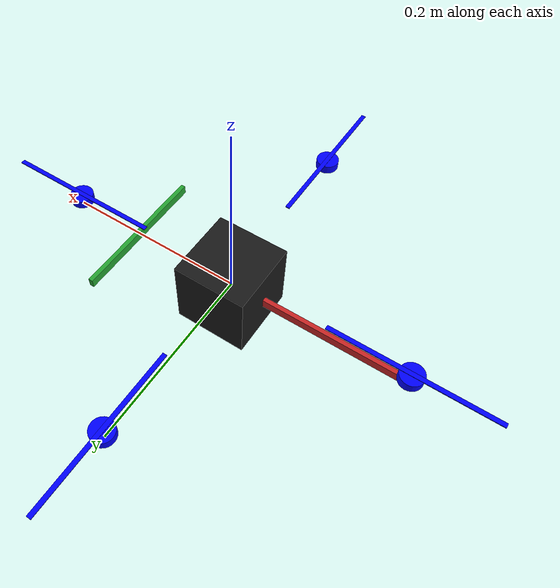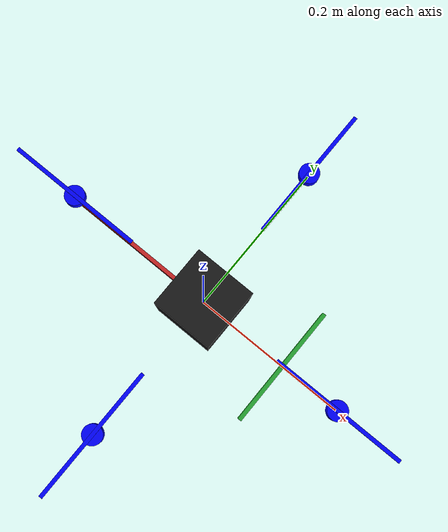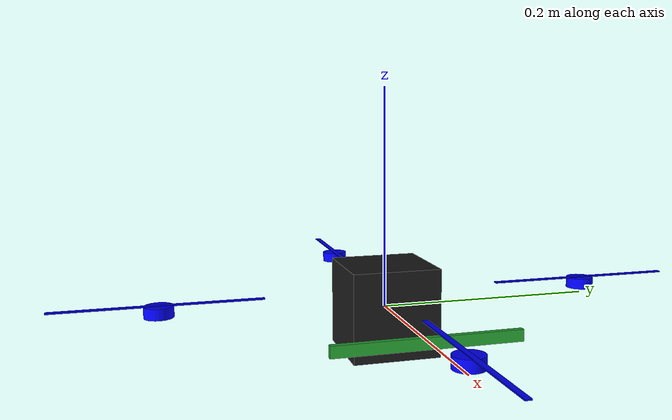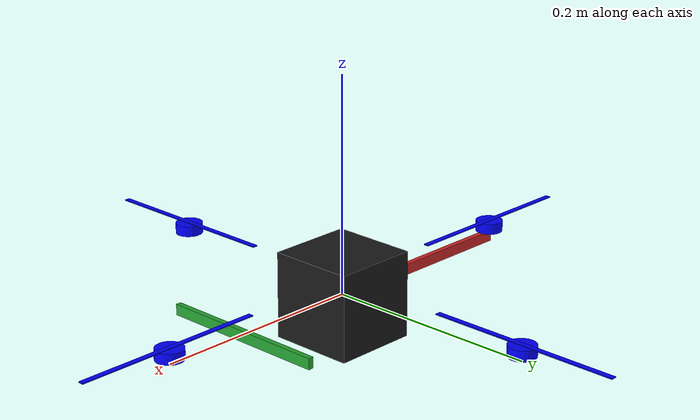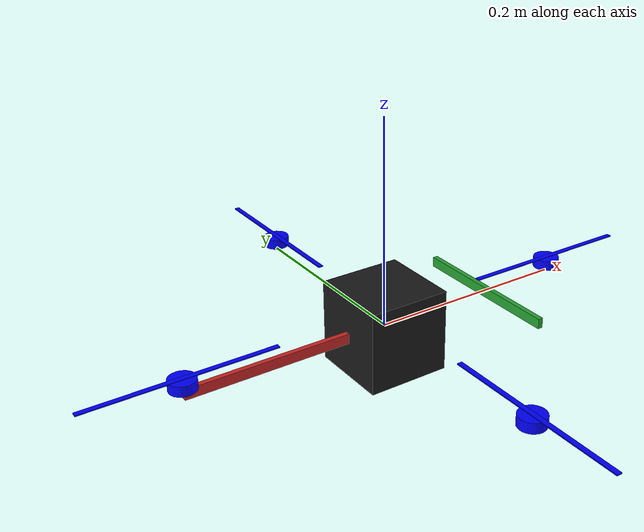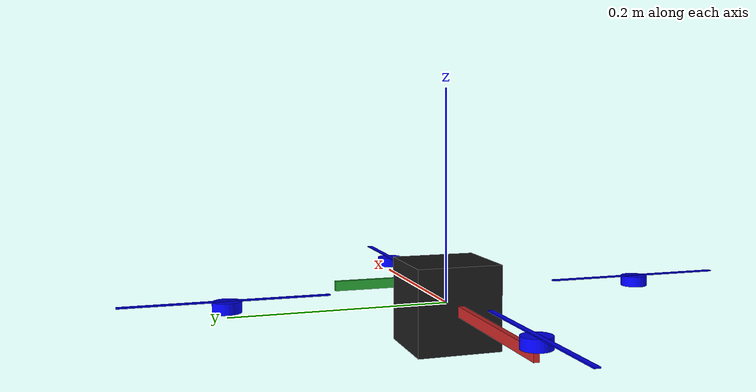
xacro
<?xml version="1.0"?>

<robot  xmlns:controller="http://playerstage.sourceforge.net/gazebo/xmlschema/#controller"
        xmlns:sensor="http://playerstage.sourceforge.net/gazebo/xmlschema/#sensor"
        xmlns:xacro="http://www.ros.org/wiki/xacro"
        name="HummingBird">

<xacro:property name="id" value="0" />

<!-- GENERAL MACROS -->
<xacro:property name="PI"       value="3.141592653589793" />
<xacro:property name="HALF_PI"  value="1.570796326794897" />

<!-- MODEL (GEOMETRICAL) MACROS -->
<xacro:property name="body_size"  value="0.080" />

<xacro:property name="arm_length" value="0.160" />
<xacro:property name="arm_width"  value="0.005" />
<xacro:property name="arm_height" value="0.010" />
<xacro:property name="arm_ori_x"  value="-0.12" />

<xacro:property name="motor_radius" value="0.0127" />
<xacro:property name="motor_length" value="0.0100" />

<xacro:property name="prop_length" value="0.180" />
<xacro:property name="prop_width"  value="0.005" />
<xacro:property name="prop_height" value="0.001" />

<!-- MODEL (PHYSICAL) MACROS -->
<xacro:property name="body_mass"  value="0.300" />
<xacro:property name="arm_mass"   value="0.030" />
<xacro:property name="motor_mass" value="0.050" />
<xacro:property name="prop_mass"  value="0.002" />

<!-- MODEL (INERTIAL) MACROS -->
<xacro:macro name="body_inertia">
  <inertia ixx="1e-5"  ixy="1e-10"  ixz="1e-10" iyy="1e-5" iyz="1e-10" izz="1e-5" />
</xacro:macro>

<xacro:macro name="arm_box_inertia">
  <inertia ixx="1e-5" ixy="0" ixz="0" iyy="1e-5" iyz="0" izz="1e-5" />
</xacro:macro>

<xacro:macro name="motor_box_inertia">
  <inertia ixx="1e-5" ixy="0" ixz="0" iyy="1e-5" iyz="0" izz="1e-5" />
</xacro:macro>

<!-- GAZEBO REFERENCES (FIX THESE) -->
  <material name="body_color">
    <color rgba=".1 .1 .1 1.0"/>
  </material>

  <gazebo reference="base_link">
    <material>Gazebo/Black</material>
  </gazebo>

  <gazebo reference="arm1">
    <material>Gazebo/Red</material>
  </gazebo>
  <gazebo reference="arm2">
    <material>Gazebo/Green</material>
  </gazebo>
  <gazebo reference="arm3">
    <material>Gazebo/Red</material>
  </gazebo>
  <gazebo reference="arm4">
    <material>Gazebo/Red</material>
  </gazebo>

  <gazebo reference="motor1">
    <material>Gazebo/Blue</material>
  </gazebo>
  <gazebo reference="motor2">
    <material>Gazebo/Blue</material>
  </gazebo>
  <gazebo reference="motor3">
    <material>Gazebo/Blue</material>
  </gazebo>
  <gazebo reference="motor4">
    <material>Gazebo/Blue</material>
  </gazebo>

  <gazebo reference="propeller1">
    <material>Gazebo/Red</material>
  </gazebo>
  <gazebo reference="propeller2">
    <material>Gazebo/Blue</material>
  </gazebo>
  <gazebo reference="propeller3">
    <material>Gazebo/Green</material>
  </gazebo>
  <gazebo reference="propeller4">
    <material>Gazebo/White</material>
  </gazebo>

<!-- CONTROLLER -->
<!-- BASE LINK -->
   <link name="base_link">
    <visual>
      <geometry>
        <box size="${body_size} ${body_size} ${body_size}"/>
      </geometry>
      <origin xyz="0 0 0" rpy="0 0 0"/>
      <material name="body_color" />
    </visual>

    <inertial>
      <origin xyz="0 0 0" rpy="0 0 0"/>
      <mass value="${body_mass}" />
      <inertia ixx="1e-5"  ixy="1e-10"  ixz="1e-10" iyy="1e-5" iyz="1e-10" izz="1e-5" />
    </inertial>

    <collision>
      <geometry>
        <box size="${body_size} ${body_size} ${body_size}"/>
      </geometry>
    </collision>
  </link>

<!-- LINK 1 -->

<!-- Arm 1 -->
  <link name="arm1">
    <visual>
      <origin xyz="${-arm_ori_x} 0 0" rpy="0 0 0" />
      <geometry>
       <box size="${arm_length} ${arm_width} ${arm_height}"/>
      </geometry>
    </visual>

    <inertial>
      <mass value="${arm_mass}" />
      <inertia ixx="1e-5" ixy="0" ixz="0" iyy="1e-5" iyz="0" izz="1e-5" />
    </inertial>

    <collision>
      <geometry>
       <box size="${arm_length} ${arm_width} ${arm_height}"/>
      </geometry>
    </collision>
  </link>

<!-- Motor 1 -->
  <link name="motor1" >
    <inertial>
      <mass value="${motor_mass}" />
      <inertia ixx="1e-5" ixy="0" ixz="0" iyy="1e-5" iyz="0" izz="1e-5" />
    </inertial>

    <visual>
      <geometry>
        <cylinder radius="${motor_radius}" length="${motor_length}"/>
      </geometry>
      <material name="Cyan">
        <color rgba="0 0 1.0 1.0"/>
      </material>
    </visual>

    <collision>
      <geometry>
        <cylinder radius="${motor_radius}" length="${motor_length}"/>
      </geometry>
    </collision>
  </link>

<!-- Propeller 1 -->
 <link name="propeller1">
    <inertial>
      <mass value="${prop_mass}" />
      <inertia ixx="1e-5" ixy="0" ixz="0" iyy="1e-5" iyz="0" izz="1e-5" />
    </inertial>

    <visual>
      <geometry>
        <box size="${prop_length} ${prop_width} ${prop_height}"/>
      </geometry>
      <material name="Cyan" />
    </visual>

    <collision>
      <geometry>
        <box size="${prop_length} ${prop_width} ${prop_height}"/>
      </geometry>
    </collision>
  </link>

<!-- Joint 1 -->
  <joint name="body_arm1" type="fixed">
	<origin xyz="0 0 0" rpy="0 0 ${2 * HALF_PI}" />
	<parent link="base_link"/>
	<child link="arm1"/>
  </joint>

  <joint name="arm_motor1" type="continuous">
	<origin xyz="-0.20 0 0.01" rpy="0 0 0" />
	<axis xyz="0 0 1" />
	<parent link="arm1" />
	<child link="motor1" />
  </joint>

  <joint name="motor_prop1" type="fixed">
	<origin xyz="0 0 0.005" rpy="0 0 0" />
	<parent link="motor1" />
	<child  link="propeller1" />
  </joint>

<!-- LINK 2 -->
<!-- Arm 2 -->
  <link name="arm2">
    <visual>
      <origin xyz="0 ${-arm_ori_x} 0" rpy="0 0 0" />
      <geometry>
       <box size="${arm_length} ${arm_width} ${arm_height}"/>
      </geometry>
    </visual>

    <inertial>
      <mass value="${arm_mass}" />
      <inertia ixx="1e-5" ixy="0" ixz="0" iyy="1e-5" iyz="0" izz="1e-5" />
    </inertial>

    <collision>
      <geometry>
       <box size="${arm_length} ${arm_width} ${arm_height}"/>
      </geometry>
    </collision>
  </link>

<!-- Motor 2 -->
  <link name="motor2" >
    <inertial>
      <mass value="${motor_mass}" />
      <inertia ixx="1e-5" ixy="0" ixz="0" iyy="1e-5" iyz="0" izz="1e-5" />
    </inertial>

    <visual>
      <geometry>
        <cylinder radius="${motor_radius}" length="${motor_length}"/>
      </geometry>
      <material name="Cyan">
        <color rgba="0 0 1.0 1.0"/>
      </material>
    </visual>

    <collision>
      <geometry>
        <cylinder radius="${motor_radius}" length="${motor_length}"/>
      </geometry>
    </collision>
  </link>

<!-- Propeller 2 -->
 <link name="propeller2">
    <inertial>
      <mass value="${prop_mass}" />
      <inertia ixx="1e-5" ixy="0" ixz="0" iyy="1e-5" iyz="0" izz="1e-5" />
    </inertial>

    <visual>
      <geometry>
        <box size="${prop_length} ${prop_width} ${prop_height}"/>
      </geometry>
      <material name="Cyan" />
    </visual>

    <collision>
      <geometry>
        <box size="${prop_length} ${prop_width} ${prop_height}"/>
      </geometry>
    </collision>
  </link>

<!-- Joint 2 -->
  <joint name="body_arm2" type="fixed">
	<origin xyz="0 0 0" rpy="0 0 ${3 * HALF_PI}" />
	<parent link="base_link"/>
	<child link="arm2"/>
  </joint>

  <joint name="arm_motor2" type="continuous">
	<origin xyz="-0.20 0 0.01" rpy="0 0 0" />
	<axis xyz="0 0 1" />
	<parent link="arm2" />
	<child link="motor2" />
  </joint>

  <joint name="motor_prop2" type="fixed">
	<origin xyz="0 0 0.005" rpy="0 0 0" />
	<parent link="motor2" />
	<child  link="propeller2" />
  </joint>

<!-- LINK 3 -->
<!-- Arm 3 -->
  <link name="arm3">
    <visual>
      <origin xyz="${arm_ori_x} 0 0" rpy="0 0 0" />
      <geometry>
       <box size="${arm_length} ${arm_width} ${arm_height}"/>
      </geometry>
    </visual>

    <inertial>
      <mass value="${arm_mass}" />
      <inertia ixx="1e-5" ixy="0" ixz="0" iyy="1e-5" iyz="0" izz="1e-5" />
    </inertial>

    <collision>
      <geometry>
       <box size="${arm_length} ${arm_width} ${arm_height}"/>
      </geometry>
    </collision>
  </link>

<!-- Motor 3 -->
  <link name="motor3" >
    <inertial>
      <mass value="${motor_mass}" />
      <inertia ixx="1e-5" ixy="0" ixz="0" iyy="1e-5" iyz="0" izz="1e-5" />
    </inertial>

    <visual>
      <geometry>
        <cylinder radius="${motor_radius}" length="${motor_length}"/>
      </geometry>
      <material name="Cyan">
        <color rgba="0 0 1.0 1.0"/>
      </material>
    </visual>

    <collision>
      <geometry>
        <cylinder radius="${motor_radius}" length="${motor_length}"/>
      </geometry>
    </collision>
  </link>

<!-- Propeller 3 -->
 <link name="propeller3">
    <inertial>
      <mass value="${prop_mass}" />
      <inertia ixx="1e-5" ixy="0" ixz="0" iyy="1e-5" iyz="0" izz="1e-5" />
    </inertial>

    <visual>
      <geometry>
        <box size="${prop_length} ${prop_width} ${prop_height}"/>
      </geometry>
      <material name="Cyan" />
    </visual>

    <collision>
      <geometry>
        <box size="${prop_length} ${prop_width} ${prop_height}"/>
      </geometry>
    </collision>
  </link>

<!-- Joint 3 -->
  <joint name="body_arm3" type="fixed">
	<origin xyz="0 0 0" rpy="0 0 ${4 * HALF_PI}" />
	<parent link="base_link"/>
	<child link="arm3"/>
  </joint>

  <joint name="arm_motor3" type="continuous">
	<origin xyz="-0.20 0 0.01" rpy="0 0 0" />
	<axis xyz="0 0 1" />
	<parent link="arm3" />
	<child link="motor3" />
  </joint>

  <joint name="motor_prop3" type="fixed">
	<origin xyz="0 0 0.005" rpy="0 0 0" />
	<parent link="motor3" />
	<child  link="propeller3" />
  </joint>

<!-- LINK 4 -->
<!-- Arm 4 -->
  <link name="arm4">
    <visual>
      <origin xyz="0 ${arm_ori_x} 0" rpy="0 0 0" />
      <geometry>
       <box size="${arm_length} ${arm_width} ${arm_height}"/>
      </geometry>
    </visual>

    <inertial>
      <mass value="${arm_mass}" />
      <inertia ixx="1e-5" ixy="0" ixz="0" iyy="1e-5" iyz="0" izz="1e-5" />
    </inertial>

    <collision>
      <geometry>
       <box size="${arm_length} ${arm_width} ${arm_height}"/>
      </geometry>
    </collision>
  </link>

<!-- Motor 4 -->
  <link name="motor4" >
    <inertial>
      <mass value="${motor_mass}" />
      <inertia ixx="1e-5" ixy="0" ixz="0" iyy="1e-5" iyz="0" izz="1e-5" />
    </inertial>

    <visual>
      <geometry>
        <cylinder radius="${motor_radius}" length="${motor_length}"/>
      </geometry>
      <material name="Cyan">
        <color rgba="0 0 1.0 1.0"/>
      </material>
    </visual>

    <collision>
      <geometry>
        <cylinder radius="${motor_radius}" length="${motor_length}"/>
      </geometry>
    </collision>
  </link>

<!-- Propeller 4 -->
 <link name="propeller4">
    <inertial>
      <mass value="${prop_mass}" />
      <inertia ixx="1e-5" ixy="0" ixz="0" iyy="1e-5" iyz="0" izz="1e-5" />
    </inertial>

    <visual>
      <geometry>
        <box size="${prop_length} ${prop_width} ${prop_height}"/>
      </geometry>
      <material name="Cyan" />
    </visual>

    <collision>
      <geometry>
        <box size="${prop_length} ${prop_width} ${prop_height}"/>
      </geometry>
    </collision>
  </link>

<!-- Joint 4 -->
  <joint name="body_arm4" type="fixed">
	<origin xyz="0 0 0" rpy="0 0 ${5 * HALF_PI}" />
	<parent link="base_link"/>
	<child link="arm4"/>
  </joint>

  <joint name="arm_motor4" type="continuous">
	<origin xyz="-0.20 0 0.01" rpy="0 0 0" />
	<axis xyz="0 0 1" />
	<parent link="arm4" />
	<child link="motor4" />
  </joint>

  <joint name="motor_prop4" type="fixed">
	<origin xyz="0 0 0.005" rpy="0 0 0" />
	<parent link="motor4" />
	<child  link="propeller4" />
  </joint>

<gazebo>
  <controller:labrob_hubi_pluginss name="labrob_hubi_plugin" plugin="libhubi_controller.so">
    <alwaysOn>true</alwaysOn>
    <update>1000</update>
    <updateRate>1000.0</updateRate>
    <armLength>${arm_length}</armLength>
    <propellerThrust>3.5e-5</propellerThrust>
    <propellerDrag>7.5e-5</propellerDrag>
    <motorSpeed>1000.0</motorSpeed>
    <thrustScale>350.0</thrustScale>
    <enableAttitudeControl>true</enableAttitudeControl>
    <enablePositionControl>true</enablePositionControl>
    <enableAbsoluteError>true</enableAbsoluteError>
    <selectInput>position</selectInput>
    <enablePropellers>true</enablePropellers>
    <recordLog>true</recordLog>
  </controller:labrob_hubi_pluginss>
  <canonicalBody>base_link</canonicalBody>
</gazebo>

</robot>
